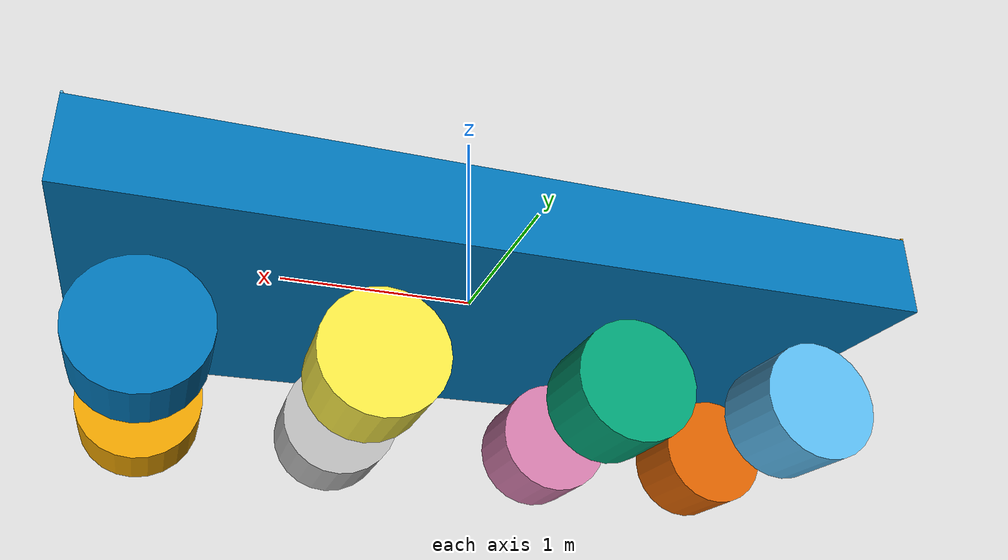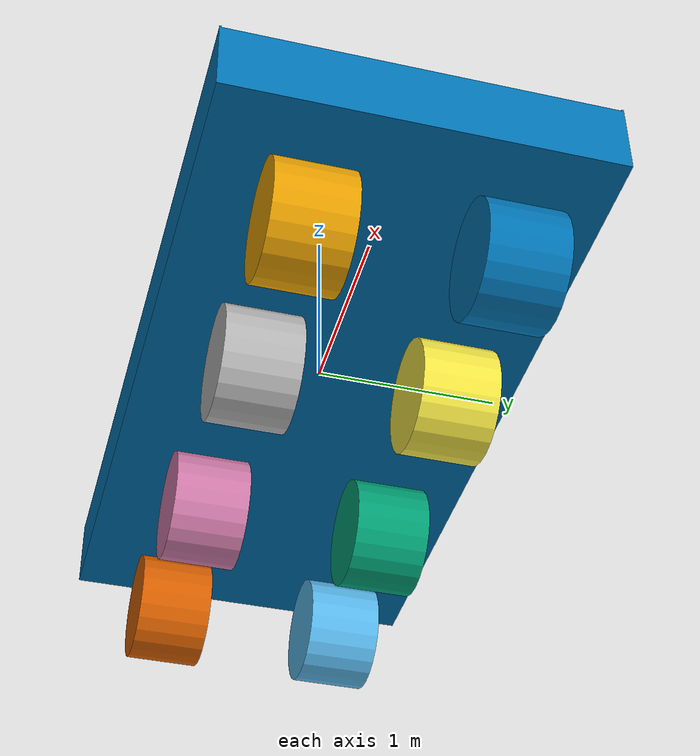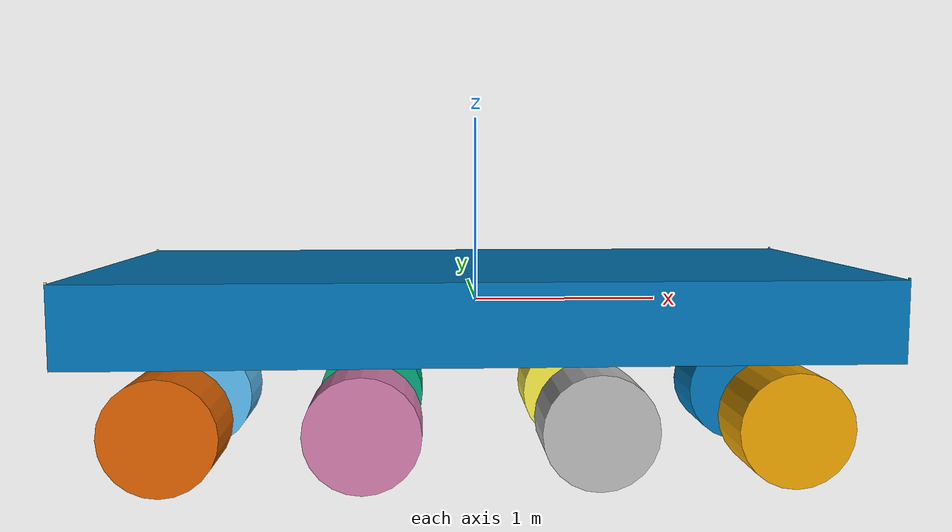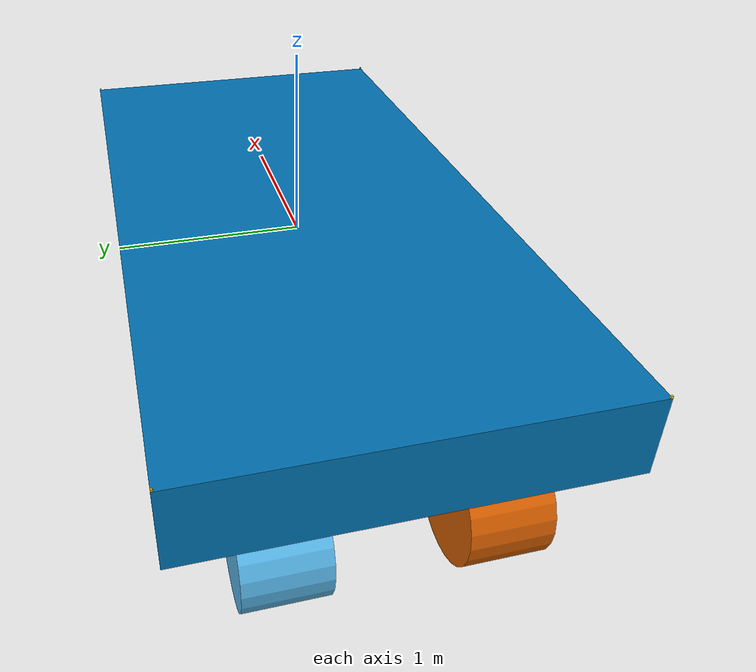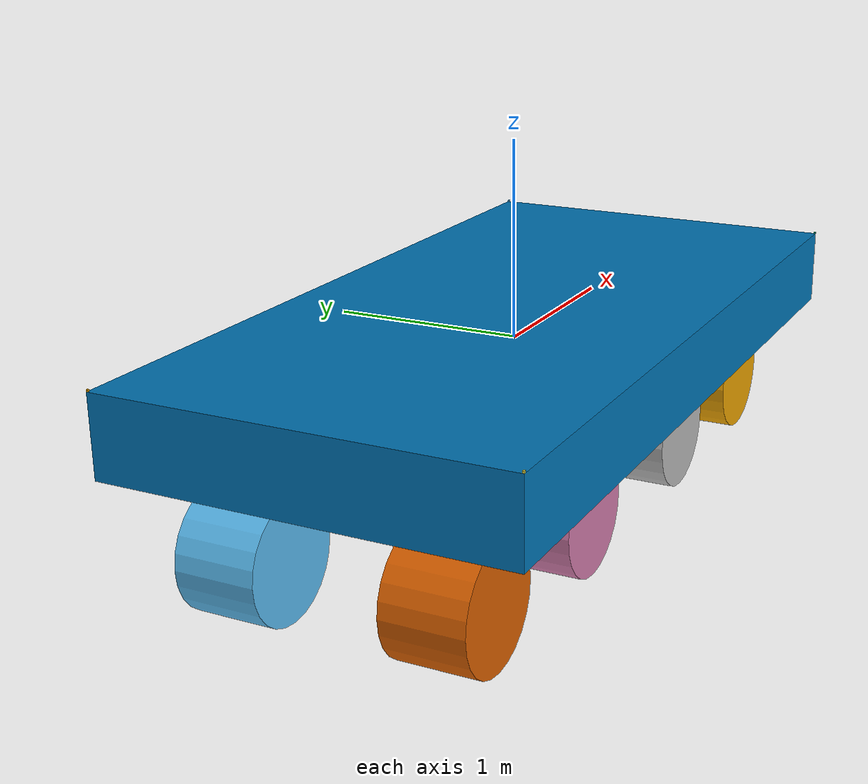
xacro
<?xml version="1.0"?>

<robot name="car_combine" xmlns:xacro="http://wiki.ros.org/xacro">
    <xacro:property name="PI" value="3.1415926535897931"/>
    <xacro:property name="laser_link" value="car_link"/>
    <xacro:include filename="laser.xacro" />
    <xacro:include filename="car.xacro" />
    <xacro:include filename="$(find robot1_description)/urdf/plugin.gazebo" />
</robot>

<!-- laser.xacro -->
<robot name="laser" xmlns:xacro="http://www.ros.org/wiki/xacro">

    <xacro:property name="laser_l" value="0.01"/>
    <xacro:property name="laser_m" value="0.1"/>

    <xacro:macro name="laser_base" params="name">
        <link name="${name}">
            <inertial>
                <mass value="${laser_m}"/>
                <origin rpy="0  0  0" xyz="0  0  0"/>
                <inertia    ixx="${laser_m/12*(laser_l*laser_l+laser_l*laser_l)}" ixy="0"
                                    iyy="${laser_m/12*(laser_l*laser_l+laser_l*laser_l)}" ixz="0"
                                    izz="${laser_m/12*(laser_l*laser_l+laser_l*laser_l)}" iyz="0" />
            </inertial>
            <collision name="collision">
                <origin rpy="0  0  0" xyz="0 0 0"/>
                <geometry>
                    <box size="${laser_l} ${laser_l} ${laser_l}"/>
                </geometry>
            </collision>
            <visual name="visual">
                <origin rpy="0  0  0" xyz="0 0 0"/>
                <geometry>
                    <box size="${laser_l} ${laser_l} ${laser_l}"/>
                </geometry>
            </visual>
        </link>
    </xacro:macro>

    <xacro:macro name="laser_sensor" params="name">
        <gazebo reference="${name}">
            <sensor type="ray" name="${name}_sensor">
                <pose>0 0 0 0 0 0</pose>
                <update_rate>100</update_rate>
                <visualize>true</visualize>
                <ray>
                    <scan>
                    <horizontal>
                    <samples>1</samples>
                    <resolution>1</resolution>
                    <min_angle>0</min_angle>
                    <max_angle>0</max_angle>
                    </horizontal>
                    </scan>
                    <range>
                    <min>0.006</min>
                    <max>10</max>
                    <resolution>0.001</resolution>
                    </range>
                    <noise>
                    <type>gaussian</type>
                    <mean>0</mean>
                    <stddev>0</stddev>
                    </noise>
                </ray>
                <plugin name="${name}_controller" filename="libgazebo_ros_laser.so">
                    <topicName>/car/${name}/scan</topicName>
                    <frameName>${laser_link}</frameName>
                </plugin>
            </sensor>
        </gazebo>
    </xacro:macro>

    <xacro:laser_base name="laser_1"/>
    <xacro:laser_base name="laser_2"/>
    <xacro:laser_base name="laser_3"/>
    <xacro:laser_base name="laser_4"/>

    <xacro:laser_sensor name="laser_1"/>
    <xacro:laser_sensor name="laser_2"/>
    <xacro:laser_sensor name="laser_3"/>
    <xacro:laser_sensor name="laser_4"/>

</robot>

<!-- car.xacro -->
<robot name="car" xmlns:xacro="http://www.ros.org/wiki/xacro">

    <xacro:property name="m_wheel" value="10"/>
    <xacro:property name="m_string" value="2.5"/>
    <xacro:property name="m_car" value="200"/>
    <xacro:property name="wheel_r" value="0.3"/>
    <xacro:property name="wheel_h" value="0.4"/>
    <xacro:property name="string_r" value="0.05"/>
    <xacro:property name="car_x" value="4"/>
    <xacro:property name="car_y" value="2"/>
    <xacro:property name="car_z" value="0.4"/>

    <xacro:macro name="wheel_joint" params="parent child x y z">
        <joint name="${child}_joint" type="continuous">
            <parent link="${parent}"/>
            <child link="${child}"/>
            <origin rpy="${PI/2}  0      0" xyz="${x} ${y} ${z}"/>
            <axis xyz="0  0  1"/>
            <limit effort="400" velocity="10" />
        </joint>
    </xacro:macro>

    <xacro:macro name="string_joint" params="parent child x y z">
        <joint name="${child}_joint" type="revolute">
            <parent link="${parent}"/>
            <child link="${child}"/>
            <origin rpy="0 0 0" xyz="${x} ${y} ${z}"/>
            <axis xyz="0  0  1"/>
            <limit effort="5000" lower="${-120*PI/180}" upper="${120*PI/180}" velocity="10"/>
        </joint>
    </xacro:macro>

    <xacro:macro name="wheel" params="name">
        <link name="${name}">
            <inertial>
                <mass value="${m_wheel}"/>
                <origin rpy="0  0  0" xyz="0  0  0"/>
                <inertia    ixx="${m_wheel/12*(3*wheel_r*wheel_r+wheel_h*wheel_h)}" ixy="0"
                                    iyy="${m_wheel/12*(3*wheel_r*wheel_r+wheel_h*wheel_h)}" ixz="0"
                                    izz="${m_wheel*wheel_r*wheel_r/2}"      iyz="0" />
            </inertial>
            <collision name="collision">
                <origin rpy="0  0  0" xyz="0  0  0"/>
                <geometry>
                    <cylinder length="${wheel_h}" radius="${wheel_r}"/>
                </geometry>
            </collision>
            <visual name="visual">
                <origin rpy="0  0  0" xyz="0  0  0"/>
                <geometry>
                    <cylinder length="${wheel_h}" radius="${wheel_r}"/>
                </geometry>
            </visual>
        </link>
    </xacro:macro>

    <xacro:macro name="string" params="name">
        <link name="${name}">
            <inertial>
                <mass value="${m_string}"/>
                <origin rpy="0  0  0" xyz="0  0  0"/>
                <inertia    ixx="${2*m_string*string_r*string_r/5}" ixy="0"
                                    iyy="${2*m_string*string_r*string_r/5}" ixz="0"
                                    izz="${2*m_string*string_r*string_r/5}"  iyz="0" />
            </inertial>
            <collision name="collision">
                <origin rpy="0  0  0" xyz="0  0  0"/>
                <geometry>
                    <sphere radius="${string_r}"/>
                </geometry>
            </collision>
            <visual name="visual">
                <origin rpy="0  0  0" xyz="0  0  0"/>
                <geometry>
                    <sphere radius="${string_r}"/>
                </geometry>
            </visual>
        </link>
    </xacro:macro>

    <xacro:macro name="motor" params="name ">
        <transmission name="${name}_tran">
            <type>transmission_interface/SimpleTransmission</type>
            <joint name="${name}_joint">
                <hardwareInterface>hardware_interface/EffortJointInterface</hardwareInterface>
            </joint>
            <actuator name="${name}_motor">
                <hardwareInterface>hardware_interface/EffortJointInterface</hardwareInterface>
                <mechanicalReduction>1</mechanicalReduction>
            </actuator>
        </transmission>
    </xacro:macro>

    <link name="car_base">
        <inertial>
            <mass value="${m_car}"/>
            <origin rpy="0  0  0" xyz="0  0  0"/>
            <inertia    ixx="${m_car/12*(car_y*car_y+car_z*car_z)}" ixy="0"
                                iyy="${m_car/12*(car_x*car_x+car_z*car_z)}" ixz="0"
                                izz="${m_car/12*(car_x*car_x+car_y*car_y)}" iyz="0" />
        </inertial>
        <collision name="collision">
            <origin rpy="0  0  0" xyz="0 0 0"/>
            <geometry>
                <box size="${car_x} ${car_y} ${car_z}"/>
            </geometry>
        </collision>
        <visual name="visual">
            <origin rpy="0  0  0" xyz="0 0 0"/>
            <geometry>
                <box size="${car_x} ${car_y} ${car_z}"/>
            </geometry>
        </visual>
        <depend package="tf"/>
        <depend package="nav_msgs"/>
    </link>

    <joint name="laser_joint_1" type="fixed">
        <parent link="car_base"/>
        <child link="laser_1"/>
        <origin rpy="0 0 ${PI/2}" xyz="-1.995  0.995 0.205"/>
    </joint>

    <joint name="laser_joint_2" type="fixed">
        <parent link="car_base"/>
        <child link="laser_2"/>
        <origin rpy="0 0 ${PI/2}" xyz="1.995  0.995 0.205"/>
    </joint>

    <joint name="laser_joint_3" type="fixed">
        <parent link="car_base"/>
        <child link="laser_3"/>
        <origin rpy="0 0 ${-PI/2}" xyz="1.995  -0.995 0.205"/>
    </joint>

    <joint name="laser_joint_4" type="fixed">
        <parent link="car_base"/>
        <child link="laser_4"/>
        <origin rpy="0 0 ${-PI/2}" xyz="-1.995  -0.995 0.205"/>
    </joint>

    <xacro:wheel name="left_wheel_1"/>
    <xacro:wheel name="left_wheel_2"/>
    <xacro:wheel name="left_wheel_3"/>
    <xacro:wheel name="left_wheel_4"/>
    <xacro:wheel name="right_wheel_1"/>
    <xacro:wheel name="right_wheel_2"/>
    <xacro:wheel name="right_wheel_3"/>
    <xacro:wheel name="right_wheel_4"/>

    <xacro:string name="left_string_1"/>
    <xacro:string name="left_string_2"/>
    <xacro:string name="left_string_3"/>
    <xacro:string name="left_string_4"/>
    <xacro:string name="right_string_1"/>
    <xacro:string name="right_string_2"/>
    <xacro:string name="right_string_3"/>
    <xacro:string name="right_string_4"/>

    <xacro:string_joint parent="car_base" child="left_string_1"    x="-1.6" y="-0.5" z="-0.6"/>
    <xacro:string_joint parent="car_base" child="left_string_2"    x="-0.6" y="-0.5" z="-0.6"/>
    <xacro:string_joint parent="car_base" child="left_string_3"    x="0.6" y="-0.5" z="-0.6"/>
    <xacro:string_joint parent="car_base" child="left_string_4"    x="1.6" y="-0.5" z="-0.6"/>
    <xacro:string_joint parent="car_base" child="right_string_1" x="-1.6" y="0.5" z="-0.6"/>
    <xacro:string_joint parent="car_base" child="right_string_2" x="-0.6" y="0.5" z="-0.6"/>
    <xacro:string_joint parent="car_base" child="right_string_3" x="0.6" y="0.5" z="-0.6"/>
    <xacro:string_joint parent="car_base" child="right_string_4" x="1.6" y="0.5" z="-0.6"/>

    <xacro:wheel_joint parent="left_string_1" child="left_wheel_1"  x="0" y="0" z="0"/>
    <xacro:wheel_joint parent="left_string_2" child="left_wheel_2"  x="0" y="0" z="0"/>
    <xacro:wheel_joint parent="left_string_3" child="left_wheel_3"  x="0" y="0" z="0"/>
    <xacro:wheel_joint parent="left_string_4" child="left_wheel_4"  x="0" y="0" z="0"/>
    <xacro:wheel_joint parent="right_string_1" child="right_wheel_1"  x="0" y="0" z="0"/>
    <xacro:wheel_joint parent="right_string_2" child="right_wheel_2"  x="0" y="0" z="0"/>
    <xacro:wheel_joint parent="right_string_3" child="right_wheel_3"  x="0" y="0" z="0"/>
    <xacro:wheel_joint parent="right_string_4" child="right_wheel_4"  x="0" y="0" z="0"/>

    <xacro:motor name="left_string_1"/>
    <xacro:motor name="left_string_2"/>
    <xacro:motor name="left_string_3"/>
    <xacro:motor name="left_string_4"/>
    <xacro:motor name="right_string_1"/>
    <xacro:motor name="right_string_2"/>
    <xacro:motor name="right_string_3"/>
    <xacro:motor name="right_string_4"/>

    <xacro:motor name="left_wheel_1"/>
    <xacro:motor name="left_wheel_2"/>
    <xacro:motor name="left_wheel_3"/>
    <xacro:motor name="left_wheel_4"/>
    <xacro:motor name="right_wheel_1"/>
    <xacro:motor name="right_wheel_2"/>
    <xacro:motor name="right_wheel_3"/>
    <xacro:motor name="right_wheel_4"/>

</robot>
